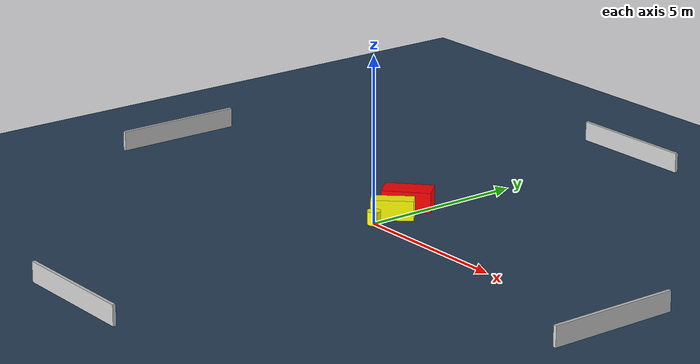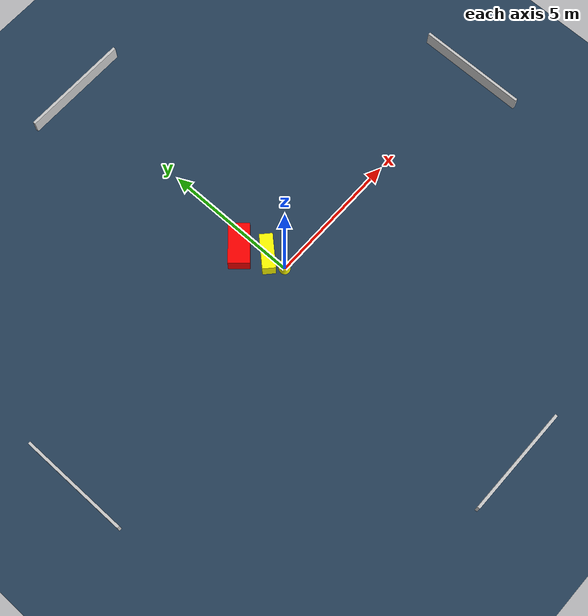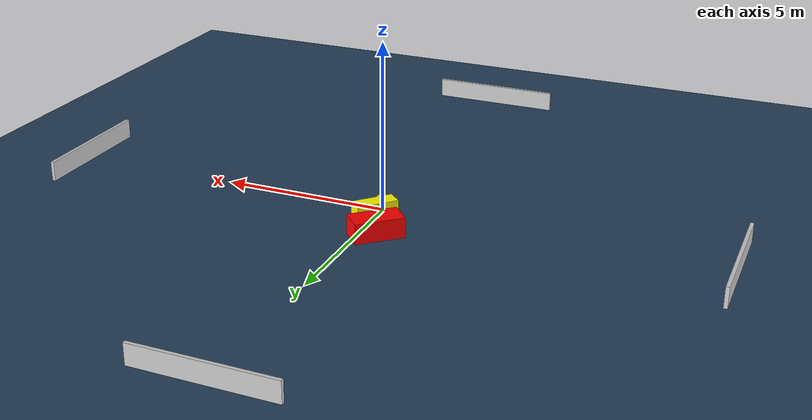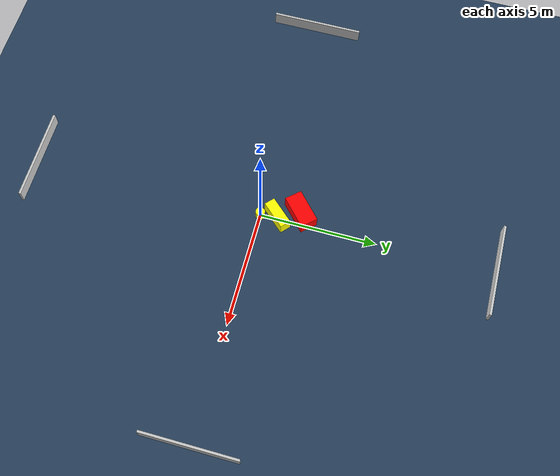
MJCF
<?xml version="1.0" ?>
<mujoco model="generated_environment">
  <option timestep="0.01" integrator="RK4" cone="elliptic"/>
  <default>
    <geom density="1"/>
  </default>
  <asset>
    <texture builtin="gradient" height="3072" name="skybox" rgb1="0.3 0.5 0.7" rgb2="0 0 0" type="skybox" width="512"/>
    <texture builtin="checker" height="300" name="groundplane" rgb1="0.2 0.3 0.4" rgb2="0.1 0.2 0.3" type="2d" width="300"/>
    <material name="groundplane" reflectance="0.2" texrepeat="5 5" texture="groundplane"/>
  </asset>
  <worldbody>
    <light dir="0 0 -1" directional="true" pos="0 0 1.5"/>
    <geom condim="3" friction="0.5 0.005 0.001" material="groundplane" name="floor" pos="0 0 0" size="0 0 0.05" type="plane"/>
    <body name="walls">
      <geom name="wall_1" condim="4" pos="-10.0 0.0 0.3" rgba="0.800000011920929 0.800000011920929 0.800000011920929 1.0" size="0.05 2.0 0.3" type="box"/>
      <geom name="wall_2" condim="4" pos="10.0 0.0 0.3" rgba="0.800000011920929 0.800000011920929 0.800000011920929 1.0" size="0.05 2.0 0.3" type="box"/>
      <geom name="wall_3" condim="4" pos="0.0 -10.0 0.3" rgba="0.800000011920929 0.800000011920929 0.800000011920929 1.0" size="2.0 0.05 0.3" type="box"/>
      <geom name="wall_4" condim="4" pos="0.0 10.0 0.3" rgba="0.800000011920929 0.800000011920929 0.800000011920929 1.0" size="2.0 0.05 0.3" type="box"/>
    </body>
    <body name="robot">
      <joint name="joint_x" type="slide" pos="0 0 0" axis="1 0 0"/>
      <joint name="joint_y" type="slide" pos="0 0 0" axis="0 1 0"/>
      <geom name="robot" type="cylinder" pos="0.0 0.0 0.2" size="0.2 0.2 0.0" mass="5.0" friction="1.0 0.005 0.0001" condim="4" rgba="1.0 1.0 0.0 1.0"/>
    </body>
    <body name="obstacle_1_movable">
      <geom name="obstacle_1_movable" condim="4" pos="-0.061132223368656174 0.7270795573362517 0.3" euler="0 0 317.3622720154853" friction="0.0 0.005 0.001" rgba="1.0 1.0 0.0 1.0" size="0.23502567740889344 0.6259063625843048 0.3" type="box" mass="0.1"/>
      <joint type="free"/>
    </body>
    <body name="obstacle_2_static">
      <geom name="obstacle_2_static" condim="4" pos="-0.49713992995752476 1.637007033188927 0.3" euler="0 0 222.11898546033083" friction="0.0 0.005 0.001" rgba="1.0 0.0 0.0 1.0" size="0.725647705048055 0.3756637828951398 0.3" type="box"/>
    </body>
  </worldbody>
  <actuator>
    <motor name="actuator_x" joint="joint_x" gear="1" ctrlrange="-1 1"/>
    <motor name="actuator_y" joint="joint_y" gear="1" ctrlrange="-1 1"/>
  </actuator>
</mujoco>
